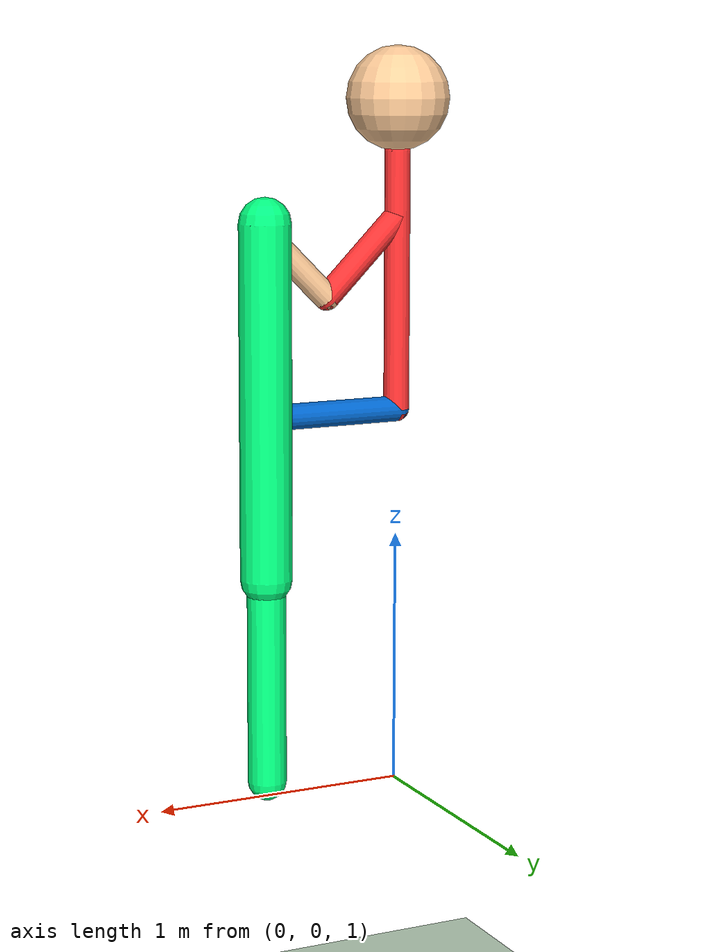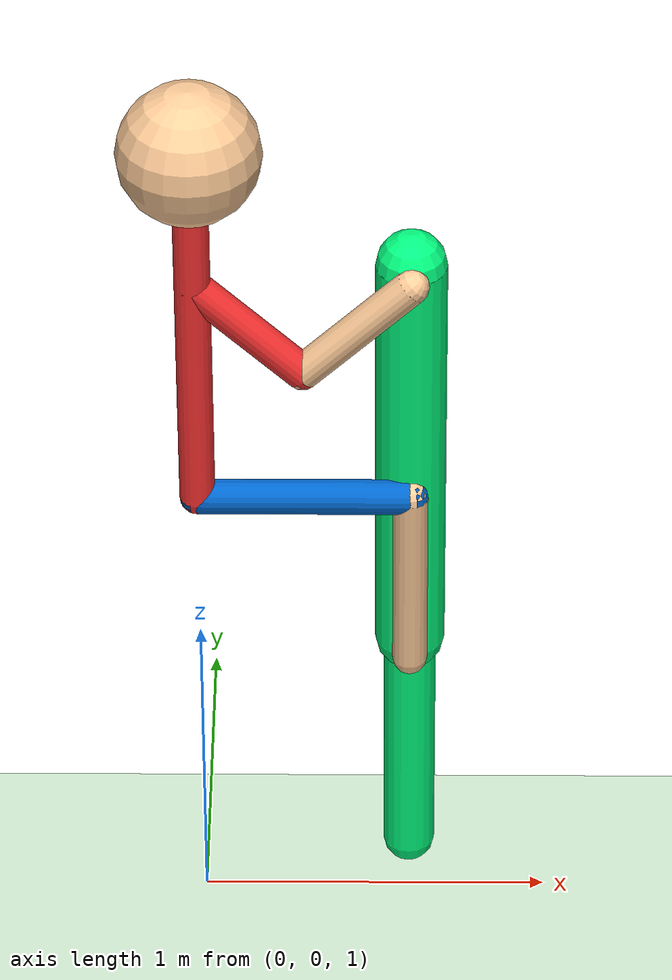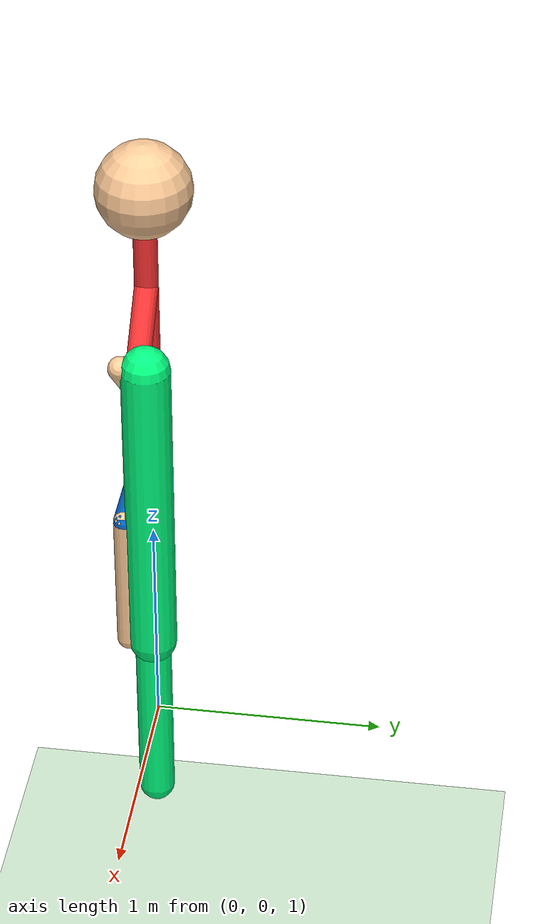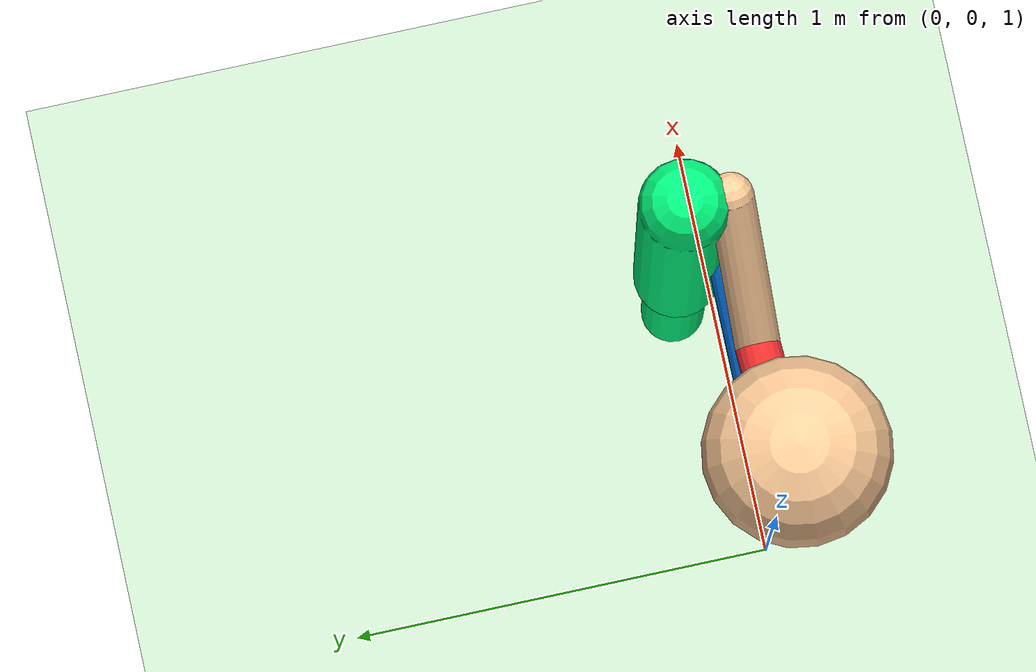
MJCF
<!-- UNCOMMENT FOR SCHEMA -->

<mujoco model="pogodude">

  <compiler angle="degree" inertiafromgeom="true" />
  <option integrator="RK4" timestep="0.002" />

  <!-- HYPERPARAMETERS -->
  <custom>
    <numeric name="height_reward_weight" data="3" />
    <numeric name="hrw_exp" data="1" />
    <numeric name="jump_reward_weight" data="1" />
    <numeric name="jrw_exp" data="1" />
    <numeric name="control_cost_weight" data="0.1" />
    <numeric name="ccw_exp" data="1" />
    <numeric name="healthy_reward_weight" data="5" />
  </custom>

  <!-- DEFAULT VALUES -->

  <default>
    <default class="connector_joint">
      <joint type="hinge" armature="1" damping="1" limited="true" axis="0 1 0" />
    </default>

    <default class="pogo_joint">
      <joint type="slide" armature="1" damping="1" limited="true" axis="0 0 1" />
    </default>

    <geom conaffinity="0" condim="3" friction="1 1 1" rgba="0.8 0.4 0.8 1" density="5.0" margin="0.01" size="0.05" />

    <motor ctrllimited="true" ctrlrange="-1.0 1.0" gear="2" />
  </default>

  <!-- VISUAL ASSETS -->

  <asset>
    <texture builtin="gradient" height="100" rgb1="1 1 1" rgb2="0 0 0" type="skybox" width="100" />
    <texture name="checker_tex" builtin="checker" type="2d" rgb1="0 0 0" rgb2="0.8 0.8 0.8" height="100" width="100" />
    <material name="checker_mat" texture="checker_tex" texrepeat="1.5 1.5" texuniform="true" reflectance="0.5" shininess="1" specular="1" />
  </asset>

  <!-- PHYSICAL ENVIRONMENT -->

  <worldbody>

    <light cutoff="100" diffuse="1 1 1" dir="0 0 -1.3" directional="true" exponent="1" pos="0 0 1.3" specular="0.1 0.1 0.1" />
    <geom type="plane" size="0 8 1" conaffinity="1" material="checker_mat" rgba="0.8 0.9 0.8 1" />

    <!-- POGODUDE -->

    <body name="body" pos="0 0 2.5">

      <!-- GLOBAL JOINTS -->
      <joint type="hinge" axis="0 1 0" />
      <joint type="slide" axis="1 0 0" />
      <joint type="slide" axis="0 0 1" />

      <geom name="body_geom" type="capsule" fromto="0 0 0 0 0 1" rgba="1 0.2 0.2 1" />

      <body name="head" pos="0 0 1.2">
        <geom name="head_geom" type="sphere" pos="0 0 0" size="0.2" rgba="1 0.8 0.6 1" />
        <camera name="track" mode="trackcom" pos="0 -10 -0" xyaxes="1 0 0 0 0 1"/>
      </body>

      <body name="upper_leg" pos="0 0 0">
        <geom name="upper_leg_geom" type="capsule" fromto="0 0 0 0.6 0 0" rgba="0 0.4 0.8 1" />
        <joint name="upper_leg_joint" type="hinge" axis="0 1 0" range="-75 90" />

        <body name="lower_leg" pos="0.6 0 0">
          <geom name="lower_leg_geom" type="capsule" fromto="0 0 0 0 0 -0.6" rgba="1 0.8 0.6 1" />
          <joint name="lower_leg_joint" type="hinge" axis="0 1 0" range="-90 75" />
        </body>
      </body>

      <body name="upper_arm" pos="0 0 0.75">
        <geom name="upper_arm_geom" type="capsule" fromto="0 0 0 0.3 0 -0.3" rgba="1 0.2 0.2 1" />
        <joint name="upper_arm_joint" type="hinge" axis="0 1 0" range="-90 10" />

        <body name="lower_arm" pos="0.3 0 -0.3">
          <geom name="lower_arm_geom" type="capsule" fromto="0 0 0 0.3 0 0.3" rgba="1 0.8 0.6 1" />
          <joint name="lower_arm_joint" type="hinge" axis="0 1 0" range="-80 90" />
        </body>
      </body>

    </body>

    <!-- POGOSTICK -->

    <body name="pogo_body" pos="0.6 0.1 1.9">

      <!-- GLOBAL JOINTS -->
      <joint type="hinge" axis="0 1 0" />
      <joint type="slide" axis="1 0 0" />
      <joint type="slide" axis="0 0 1" />

      <geom name="pogo_body_geom" type="capsule" fromto="0 0 0 0 0 1.35" size="0.1" rgba="0 1 0.5 1" />

      <body name="pogo_rod" pos="0 0 0">
        <geom name="pogo_rod_geom" type="capsule" fromto="0 0 0 0 0 -0.8" size="0.075" rgba="0 1 0.5 1" />
        <joint name="rod_spring" type="slide" axis="0 0 1" range="0 0.7" stiffness="75" />
      </body>
    </body>

  </worldbody>

  <!-- POGOSTICK GRIP -->

  <equality>
    <connect name="feet" body1="lower_leg" body2="pogo_body" anchor="0 0 -0.6" />
    <connect name="hands" body1="lower_arm" body2="pogo_body" anchor="0.3 0 0.3" />
  </equality>

  <!-- ACTUATORS -->

  <actuator>
    <motor name="hip" joint="upper_leg_joint" />
    <motor name="knee" joint="lower_leg_joint" />
    <motor name="shoulder" joint="upper_arm_joint" />
    <motor name="elbow" joint="lower_arm_joint" />
  </actuator>

</mujoco>
